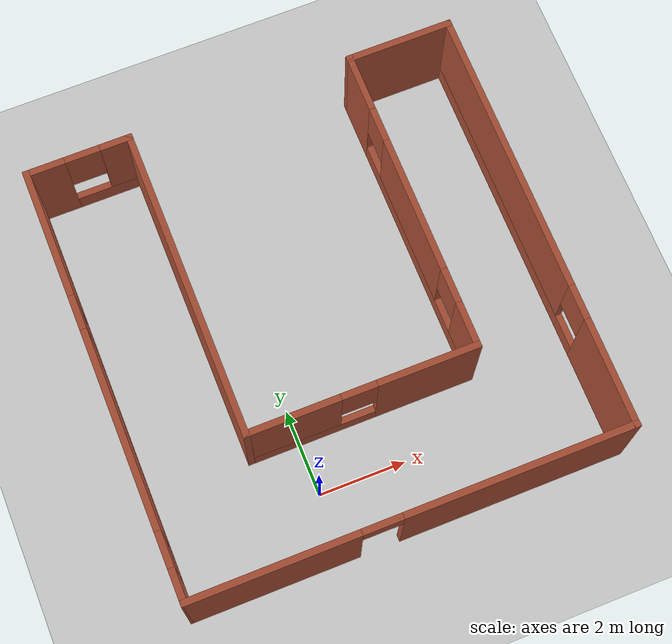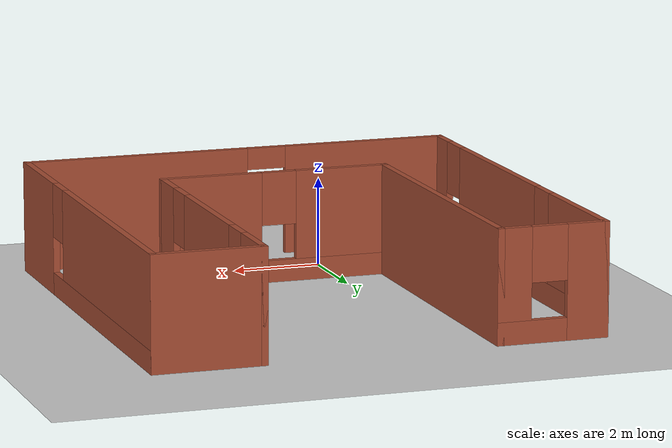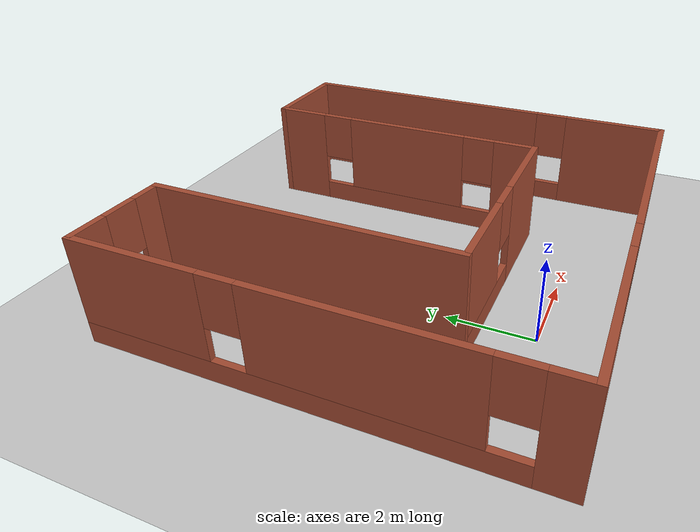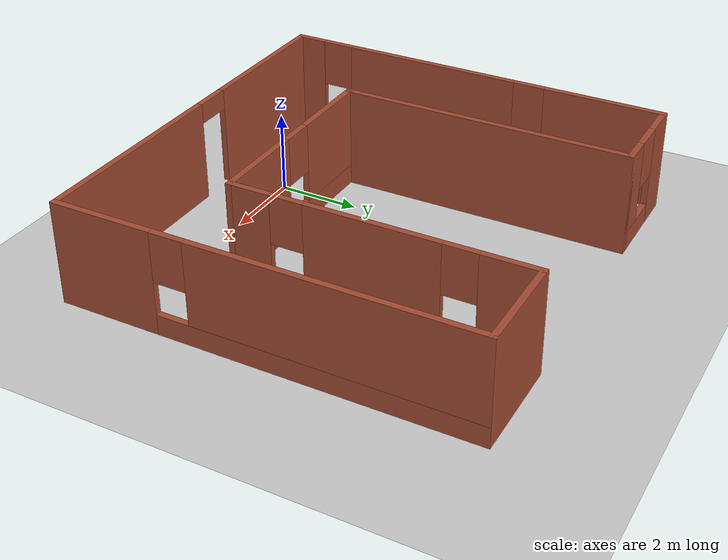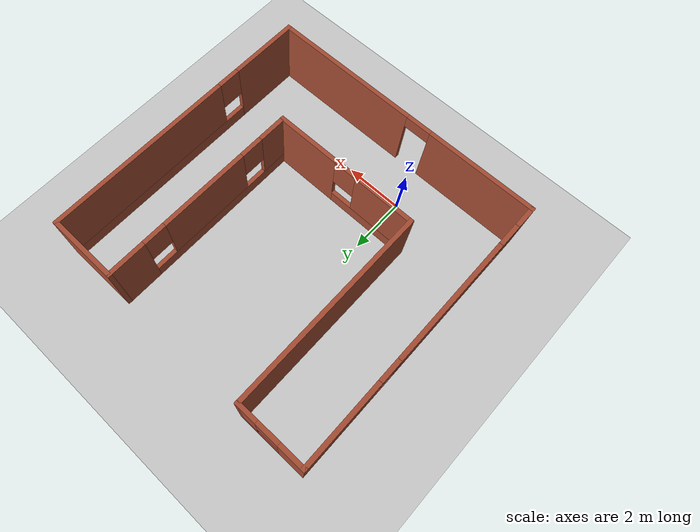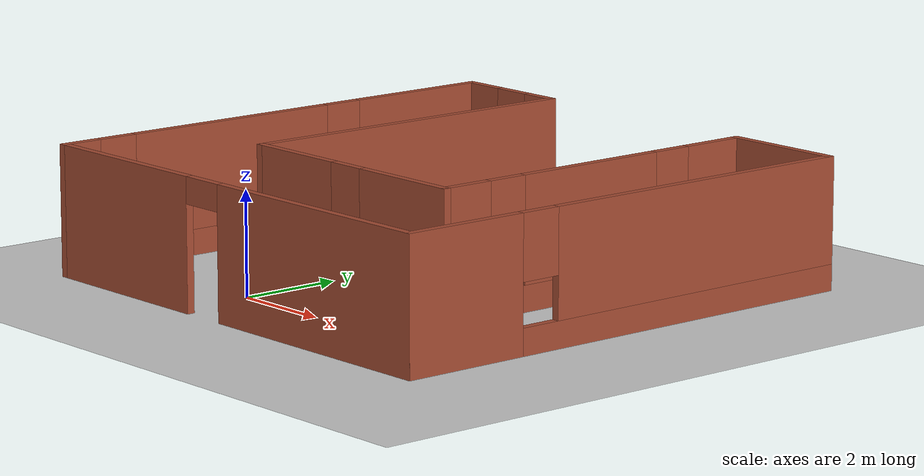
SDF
<sdf version="1.6">
 <world name="default">
  <light name="sun" type="directional">
   <pose>0 0 10 0 -0 0</pose>
   <diffuse>0.8 0.8 0.8 1</diffuse>
   <specular>0.2 0.2 0.2 1</specular>
   <attenuation>
    <range>1000</range>
    <constant>0.9</constant>
    <linear>0.01</linear>
    <quadratic>0.001</quadratic>
   </attenuation>
   <direction>-0.5 0.1 -0.9</direction>
  </light>
  <model name="ground_plane">
   <static>1</static>
   <link name="link">
    <collision name="collision">
     <geometry><plane><normal>0 0 1</normal><size>100 100</size></plane></geometry>
     <surface><friction><ode><mu>100</mu><mu2>50</mu2></ode></friction></surface>
    </collision>
    <visual name="visual">
     <cast_shadows>0</cast_shadows>
     <geometry><plane><normal>0 0 1</normal><size>100 100</size></plane></geometry>
     <material>
      <script><uri>file://media/materials/scripts/gazebo.material</uri><name>Gazebo/Grey</name></script>
     </material>
    </visual>
   </link>
  </model>
  <gravity>0 0 -9.8</gravity>
  <magnetic_field>6e-06 2.3e-05 -4.2e-05</magnetic_field>
  <atmosphere type="adiabatic"/>
  <physics name="default_physics" default="0" type="ode">
   <max_step_size>0.001</max_step_size>
   <real_time_factor>1</real_time_factor>
   <real_time_update_rate>1000</real_time_update_rate>
  </physics>
  <scene><ambient>0.4 0.4 0.4 1</ambient><background>0.7 0.7 0.7 1</background><shadows>1</shadows></scene>
  <spherical_coordinates>
   <surface_model>EARTH_WGS84</surface_model>
   <latitude_deg>0</latitude_deg>
   <longitude_deg>0</longitude_deg>
   <elevation>0</elevation>
   <heading_deg>0</heading_deg>
  </spherical_coordinates>
  <model name="Untitled">
   <pose>1.45695 3.42667 0 0 -0 0</pose>
   <link name="Wall_42">
    <pose>-1e-06 -4.925 0 0 0 -1.8e-05</pose>
    <visual name="Wall_42_Visual_0">
     <pose>-3.06684 0 1.25 0 -0 0</pose>
     <geometry><box><size>3.86633 0.15 2.5</size></box></geometry>
     <material>
      <script><uri>file://media/materials/scripts/gazebo.material</uri><name>Gazebo/Bricks</name></script>
      <ambient>0.333333 1 1 1</ambient>
     </material>
     <meta><layer>0</layer></meta>
    </visual>
    <collision name="Wall_42_Collision_0">
     <geometry><box><size>3.86633 0.15 2.5</size></box></geometry>
     <pose>-3.06684 0 1.25 0 -0 0</pose>
    </collision>
    <visual name="Wall_42_Visual_1">
     <pose>2.38316 0 1.25 0 -0 0</pose>
     <geometry><box><size>5.23367 0.15 2.5</size></box></geometry>
     <material>
      <script><uri>file://media/materials/scripts/gazebo.material</uri><name>Gazebo/Bricks</name></script>
      <ambient>0.333333 1 1 1</ambient>
     </material>
     <meta><layer>0</layer></meta>
    </visual>
    <collision name="Wall_42_Collision_1">
     <geometry><box><size>5.23367 0.15 2.5</size></box></geometry>
     <pose>2.38316 0 1.25 0 -0 0</pose>
    </collision>
    <visual name="Wall_42_Visual_2">
     <pose>-0.683672 0 2.25 0 -0 0</pose>
     <geometry><box><size>0.9 0.15 0.5</size></box></geometry>
     <material>
      <script><uri>file://media/materials/scripts/gazebo.material</uri><name>Gazebo/Bricks</name></script>
      <ambient>0.333333 1 1 1</ambient>
     </material>
     <meta><layer>0</layer></meta>
    </visual>
    <collision name="Wall_42_Collision_2">
     <geometry><box><size>0.9 0.15 0.5</size></box></geometry>
     <pose>-0.683672 0 2.25 0 -0 0</pose>
    </collision>
   </link>
   <link name="Wall_43">
    <pose>4.925 1e-06 0 0 -0 1.57082</pose>
    <visual name="Wall_43_Visual_0">
     <pose>-3.74722 0 1.25 0 -0 0</pose>
     <geometry><box><size>2.50557 0.15 2.5</size></box></geometry>
     <material>
      <script><uri>file://media/materials/scripts/gazebo.material</uri><name>Gazebo/Bricks</name></script>
      <ambient>0.333333 1 1 1</ambient>
     </material>
     <meta><layer>0</layer></meta>
    </visual>
    <collision name="Wall_43_Collision_0">
     <geometry><box><size>2.50557 0.15 2.5</size></box></geometry>
     <pose>-3.74722 0 1.25 0 -0 0</pose>
    </collision>
    <visual name="Wall_43_Visual_1">
     <pose>1.25279 0 0.25 0 -0 0</pose>
     <geometry><box><size>7.49443 0.15 0.5</size></box></geometry>
     <material>
      <script><uri>file://media/materials/scripts/gazebo.material</uri><name>Gazebo/Bricks</name></script>
      <ambient>0.333333 1 1 1</ambient>
     </material>
     <meta><layer>0</layer></meta>
    </visual>
    <collision name="Wall_43_Collision_1">
     <geometry><box><size>7.49443 0.15 0.5</size></box></geometry>
     <pose>1.25279 0 0.25 0 -0 0</pose>
    </collision>
    <visual name="Wall_43_Visual_2">
     <pose>1.65278 0 1.5 0 -0 0</pose>
     <geometry><box><size>6.69443 0.15 2</size></box></geometry>
     <material>
      <script><uri>file://media/materials/scripts/gazebo.material</uri><name>Gazebo/Bricks</name></script>
      <ambient>0.333333 1 1 1</ambient>
     </material>
     <meta><layer>0</layer></meta>
    </visual>
    <collision name="Wall_43_Collision_2">
     <geometry><box><size>6.69443 0.15 2</size></box></geometry>
     <pose>1.65278 0 1.5 0 -0 0</pose>
    </collision>
    <visual name="Wall_43_Visual_3">
     <pose>-2.09443 0 1.9 0 -0 0</pose>
     <geometry><box><size>0.8 0.15 1.2</size></box></geometry>
     <material>
      <script><uri>file://media/materials/scripts/gazebo.material</uri><name>Gazebo/Bricks</name></script>
      <ambient>0.333333 1 1 1</ambient>
     </material>
     <meta><layer>0</layer></meta>
    </visual>
    <collision name="Wall_43_Collision_3">
     <geometry><box><size>0.8 0.15 1.2</size></box></geometry>
     <pose>-2.09443 0 1.9 0 -0 0</pose>
    </collision>
   </link>
   <link name="Wall_44">
    <collision name="Wall_44_Collision">
     <geometry><box><size>2.5 0.15 2.5</size></box></geometry>
     <pose>0 0 1.25 0 -0 0</pose>
    </collision>
    <visual name="Wall_44_Visual">
     <pose>0 0 1.25 0 -0 0</pose>
     <geometry><box><size>2.5 0.15 2.5</size></box></geometry>
     <material>
      <script><uri>file://media/materials/scripts/gazebo.material</uri><name>Gazebo/Bricks</name></script>
      <ambient>0.333333 1 1 1</ambient>
     </material>
     <meta><layer>0</layer></meta>
    </visual>
    <pose>3.74988 4.92509 0 0 -0 3.14159</pose>
   </link>
   <link name="Wall_52">
    <pose>-4.92512 8.8e-05 0 0 -0 1.5708</pose>
    <visual name="Wall_52_Visual_0">
     <pose>-4.59203 0 1.25 0 -0 0</pose>
     <geometry><box><size>0.815939 0.15 2.5</size></box></geometry>
     <material>
      <script><uri>file://media/materials/scripts/gazebo.material</uri><name>Gazebo/Bricks</name></script>
      <ambient>0.333333 1 1 1</ambient>
     </material>
     <meta><layer>0</layer></meta>
    </visual>
    <collision name="Wall_52_Collision_0">
     <geometry><box><size>0.815939 0.15 2.5</size></box></geometry>
     <pose>-4.59203 0 1.25 0 -0 0</pose>
    </collision>
    <visual name="Wall_52_Visual_1">
     <pose>0.407969 0 0.25 0 -0 0</pose>
     <geometry><box><size>9.18406 0.15 0.5</size></box></geometry>
     <material>
      <script><uri>file://media/materials/scripts/gazebo.material</uri><name>Gazebo/Bricks</name></script>
      <ambient>0.333333 1 1 1</ambient>
     </material>
     <meta><layer>0</layer></meta>
    </visual>
    <collision name="Wall_52_Collision_1">
     <geometry><box><size>9.18406 0.15 0.5</size></box></geometry>
     <pose>0.407969 0 0.25 0 -0 0</pose>
    </collision>
    <visual name="Wall_52_Visual_2">
     <pose>-1.10896 0 1.5 0 -0 0</pose>
     <geometry><box><size>4.55021 0.15 2</size></box></geometry>
     <material>
      <script><uri>file://media/materials/scripts/gazebo.material</uri><name>Gazebo/Bricks</name></script>
      <ambient>0.333333 1 1 1</ambient>
     </material>
     <meta><layer>0</layer></meta>
    </visual>
    <collision name="Wall_52_Collision_2">
     <geometry><box><size>4.55021 0.15 2</size></box></geometry>
     <pose>-1.10896 0 1.5 0 -0 0</pose>
    </collision>
    <visual name="Wall_52_Visual_3">
     <pose>3.48307 0 1.5 0 -0 0</pose>
     <geometry><box><size>3.03385 0.15 2</size></box></geometry>
     <material>
      <script><uri>file://media/materials/scripts/gazebo.material</uri><name>Gazebo/Bricks</name></script>
      <ambient>0.333333 1 1 1</ambient>
     </material>
     <meta><layer>0</layer></meta>
    </visual>
    <collision name="Wall_52_Collision_3">
     <geometry><box><size>3.03385 0.15 2</size></box></geometry>
     <pose>3.48307 0 1.5 0 -0 0</pose>
    </collision>
    <visual name="Wall_52_Visual_4">
     <pose>-3.78406 0 1.9 0 -0 0</pose>
     <geometry><box><size>0.8 0.15 1.2</size></box></geometry>
     <material>
      <script><uri>file://media/materials/scripts/gazebo.material</uri><name>Gazebo/Bricks</name></script>
      <ambient>0.333333 1 1 1</ambient>
     </material>
     <meta><layer>0</layer></meta>
    </visual>
    <collision name="Wall_52_Collision_4">
     <geometry><box><size>0.8 0.15 1.2</size></box></geometry>
     <pose>-3.78406 0 1.9 0 -0 0</pose>
    </collision>
    <visual name="Wall_52_Visual_5">
     <pose>1.56615 0 1.9 0 -0 0</pose>
     <geometry><box><size>0.8 0.15 1.2</size></box></geometry>
     <material>
      <script><uri>file://media/materials/scripts/gazebo.material</uri><name>Gazebo/Bricks</name></script>
      <ambient>0.333333 1 1 1</ambient>
     </material>
     <meta><layer>0</layer></meta>
    </visual>
    <collision name="Wall_52_Collision_5">
     <geometry><box><size>0.8 0.15 1.2</size></box></geometry>
     <pose>1.56615 0 1.9 0 -0 0</pose>
    </collision>
   </link>
   <link name="Wall_54">
    <pose>-3.75012 4.92509 0 0 -0 0</pose>
    <visual name="Wall_54_Visual_0">
     <pose>-0.780182 0 1.25 0 -0 0</pose>
     <geometry><box><size>0.939637 0.15 2.5</size></box></geometry>
     <material>
      <script><uri>file://media/materials/scripts/gazebo.material</uri><name>Gazebo/Bricks</name></script>
      <ambient>0.333333 1 1 1</ambient>
     </material>
     <meta><layer>0</layer></meta>
    </visual>
    <collision name="Wall_54_Collision_0">
     <geometry><box><size>0.939637 0.15 2.5</size></box></geometry>
     <pose>-0.780182 0 1.25 0 -0 0</pose>
    </collision>
    <visual name="Wall_54_Visual_1">
     <pose>0.469818 0 0.25 0 -0 0</pose>
     <geometry><box><size>1.56036 0.15 0.5</size></box></geometry>
     <material>
      <script><uri>file://media/materials/scripts/gazebo.material</uri><name>Gazebo/Bricks</name></script>
      <ambient>0.333333 1 1 1</ambient>
     </material>
     <meta><layer>0</layer></meta>
    </visual>
    <collision name="Wall_54_Collision_1">
     <geometry><box><size>1.56036 0.15 0.5</size></box></geometry>
     <pose>0.469818 0 0.25 0 -0 0</pose>
    </collision>
    <visual name="Wall_54_Visual_2">
     <pose>0.869818 0 1.5 0 -0 0</pose>
     <geometry><box><size>0.760363 0.15 2</size></box></geometry>
     <material>
      <script><uri>file://media/materials/scripts/gazebo.material</uri><name>Gazebo/Bricks</name></script>
      <ambient>0.333333 1 1 1</ambient>
     </material>
     <meta><layer>0</layer></meta>
    </visual>
    <collision name="Wall_54_Collision_2">
     <geometry><box><size>0.760363 0.15 2</size></box></geometry>
     <pose>0.869818 0 1.5 0 -0 0</pose>
    </collision>
    <visual name="Wall_54_Visual_3">
     <pose>0.089637 0 1.9 0 -0 0</pose>
     <geometry><box><size>0.8 0.15 1.2</size></box></geometry>
     <material>
      <script><uri>file://media/materials/scripts/gazebo.material</uri><name>Gazebo/Bricks</name></script>
      <ambient>0.333333 1 1 1</ambient>
     </material>
     <meta><layer>0</layer></meta>
    </visual>
    <collision name="Wall_54_Collision_3">
     <geometry><box><size>0.8 0.15 1.2</size></box></geometry>
     <pose>0.089637 0 1.9 0 -0 0</pose>
    </collision>
   </link>
   <link name="Wall_56">
    <collision name="Wall_56_Collision">
     <geometry><box><size>7.25 0.15 2.5</size></box></geometry>
     <pose>0 0 1.25 0 -0 0</pose>
    </collision>
    <visual name="Wall_56_Visual">
     <pose>0 0 1.25 0 -0 0</pose>
     <geometry><box><size>7.25 0.15 2.5</size></box></geometry>
     <material>
      <script><uri>file://media/materials/scripts/gazebo.material</uri><name>Gazebo/Bricks</name></script>
      <ambient>1 1 1 1</ambient>
     </material>
     <meta><layer>0</layer></meta>
    </visual>
    <pose>-2.57512 1.37509 0 0 0 -1.5708</pose>
   </link>
   <link name="Wall_58">
    <pose>2.57488 1.37509 0 0 0 -1.5708</pose>
    <visual name="Wall_58_Visual_0">
     <pose>-2.93273 0 1.25 0 -0 0</pose>
     <geometry><box><size>1.38454 0.15 2.5</size></box></geometry>
     <material>
      <script><uri>file://media/materials/scripts/gazebo.material</uri><name>Gazebo/Bricks</name></script>
      <ambient>0.333333 1 1 1</ambient>
     </material>
     <meta><layer>0</layer></meta>
    </visual>
    <collision name="Wall_58_Collision_0">
     <geometry><box><size>1.38454 0.15 2.5</size></box></geometry>
     <pose>-2.93273 0 1.25 0 -0 0</pose>
    </collision>
    <visual name="Wall_58_Visual_1">
     <pose>0.692269 0 0.25 0 -0 0</pose>
     <geometry><box><size>5.86546 0.15 0.5</size></box></geometry>
     <material>
      <script><uri>file://media/materials/scripts/gazebo.material</uri><name>Gazebo/Bricks</name></script>
      <ambient>0.333333 1 1 1</ambient>
     </material>
     <meta><layer>0</layer></meta>
    </visual>
    <collision name="Wall_58_Collision_1">
     <geometry><box><size>5.86546 0.15 0.5</size></box></geometry>
     <pose>0.692269 0 0.25 0 -0 0</pose>
    </collision>
    <visual name="Wall_58_Visual_2">
     <pose>0.150782 0 1.5 0 -0 0</pose>
     <geometry><box><size>3.18249 0.15 2</size></box></geometry>
     <material>
      <script><uri>file://media/materials/scripts/gazebo.material</uri><name>Gazebo/Bricks</name></script>
      <ambient>0.333333 1 1 1</ambient>
     </material>
     <meta><layer>0</layer></meta>
    </visual>
    <collision name="Wall_58_Collision_2">
     <geometry><box><size>3.18249 0.15 2</size></box></geometry>
     <pose>0.150782 0 1.5 0 -0 0</pose>
    </collision>
    <visual name="Wall_58_Visual_3">
     <pose>3.08351 0 1.5 0 -0 0</pose>
     <geometry><box><size>1.08297 0.15 2</size></box></geometry>
     <material>
      <script><uri>file://media/materials/scripts/gazebo.material</uri><name>Gazebo/Bricks</name></script>
      <ambient>0.333333 1 1 1</ambient>
     </material>
     <meta><layer>0</layer></meta>
    </visual>
    <collision name="Wall_58_Collision_3">
     <geometry><box><size>1.08297 0.15 2</size></box></geometry>
     <pose>3.08351 0 1.5 0 -0 0</pose>
    </collision>
    <visual name="Wall_58_Visual_4">
     <pose>-1.84046 0 1.9 0 -0 0</pose>
     <geometry><box><size>0.8 0.15 1.2</size></box></geometry>
     <material>
      <script><uri>file://media/materials/scripts/gazebo.material</uri><name>Gazebo/Bricks</name></script>
      <ambient>0.333333 1 1 1</ambient>
     </material>
     <meta><layer>0</layer></meta>
    </visual>
    <collision name="Wall_58_Collision_4">
     <geometry><box><size>0.8 0.15 1.2</size></box></geometry>
     <pose>-1.84046 0 1.9 0 -0 0</pose>
    </collision>
    <visual name="Wall_58_Visual_5">
     <pose>2.14203 0 1.9 0 -0 0</pose>
     <geometry><box><size>0.8 0.15 1.2</size></box></geometry>
     <material>
      <script><uri>file://media/materials/scripts/gazebo.material</uri><name>Gazebo/Bricks</name></script>
      <ambient>0.333333 1 1 1</ambient>
     </material>
     <meta><layer>0</layer></meta>
    </visual>
    <collision name="Wall_58_Collision_5">
     <geometry><box><size>0.8 0.15 1.2</size></box></geometry>
     <pose>2.14203 0 1.9 0 -0 0</pose>
    </collision>
   </link>
   <link name="Wall_59">
    <pose>-0.000122 -2.17491 0 0 -0 3.14159</pose>
    <visual name="Wall_59_Visual_0">
     <pose>-1.48493 0 1.25 0 -0 0</pose>
     <geometry><box><size>2.33015 0.15 2.5</size></box></geometry>
     <material>
      <script><uri>file://media/materials/scripts/gazebo.material</uri><name>Gazebo/Bricks</name></script>
      <ambient>0.333333 1 1 1</ambient>
     </material>
     <meta><layer>0</layer></meta>
    </visual>
    <collision name="Wall_59_Collision_0">
     <geometry><box><size>2.33015 0.15 2.5</size></box></geometry>
     <pose>-1.48493 0 1.25 0 -0 0</pose>
    </collision>
    <visual name="Wall_59_Visual_1">
     <pose>1.16507 0 0.25 0 -0 0</pose>
     <geometry><box><size>2.96985 0.15 0.5</size></box></geometry>
     <material>
      <script><uri>file://media/materials/scripts/gazebo.material</uri><name>Gazebo/Bricks</name></script>
      <ambient>0.333333 1 1 1</ambient>
     </material>
     <meta><layer>0</layer></meta>
    </visual>
    <collision name="Wall_59_Collision_1">
     <geometry><box><size>2.96985 0.15 0.5</size></box></geometry>
     <pose>1.16507 0 0.25 0 -0 0</pose>
    </collision>
    <visual name="Wall_59_Visual_2">
     <pose>1.56507 0 1.5 0 -0 0</pose>
     <geometry><box><size>2.16985 0.15 2</size></box></geometry>
     <material>
      <script><uri>file://media/materials/scripts/gazebo.material</uri><name>Gazebo/Bricks</name></script>
      <ambient>0.333333 1 1 1</ambient>
     </material>
     <meta><layer>0</layer></meta>
    </visual>
    <collision name="Wall_59_Collision_2">
     <geometry><box><size>2.16985 0.15 2</size></box></geometry>
     <pose>1.56507 0 1.5 0 -0 0</pose>
    </collision>
    <visual name="Wall_59_Visual_3">
     <pose>0.080147 0 1.9 0 -0 0</pose>
     <geometry><box><size>0.8 0.15 1.2</size></box></geometry>
     <material>
      <script><uri>file://media/materials/scripts/gazebo.material</uri><name>Gazebo/Bricks</name></script>
      <ambient>0.333333 1 1 1</ambient>
     </material>
     <meta><layer>0</layer></meta>
    </visual>
    <collision name="Wall_59_Collision_3">
     <geometry><box><size>0.8 0.15 1.2</size></box></geometry>
     <pose>0.080147 0 1.9 0 -0 0</pose>
    </collision>
   </link>
   <static>1</static>
  </model>
 </world>
</sdf>
